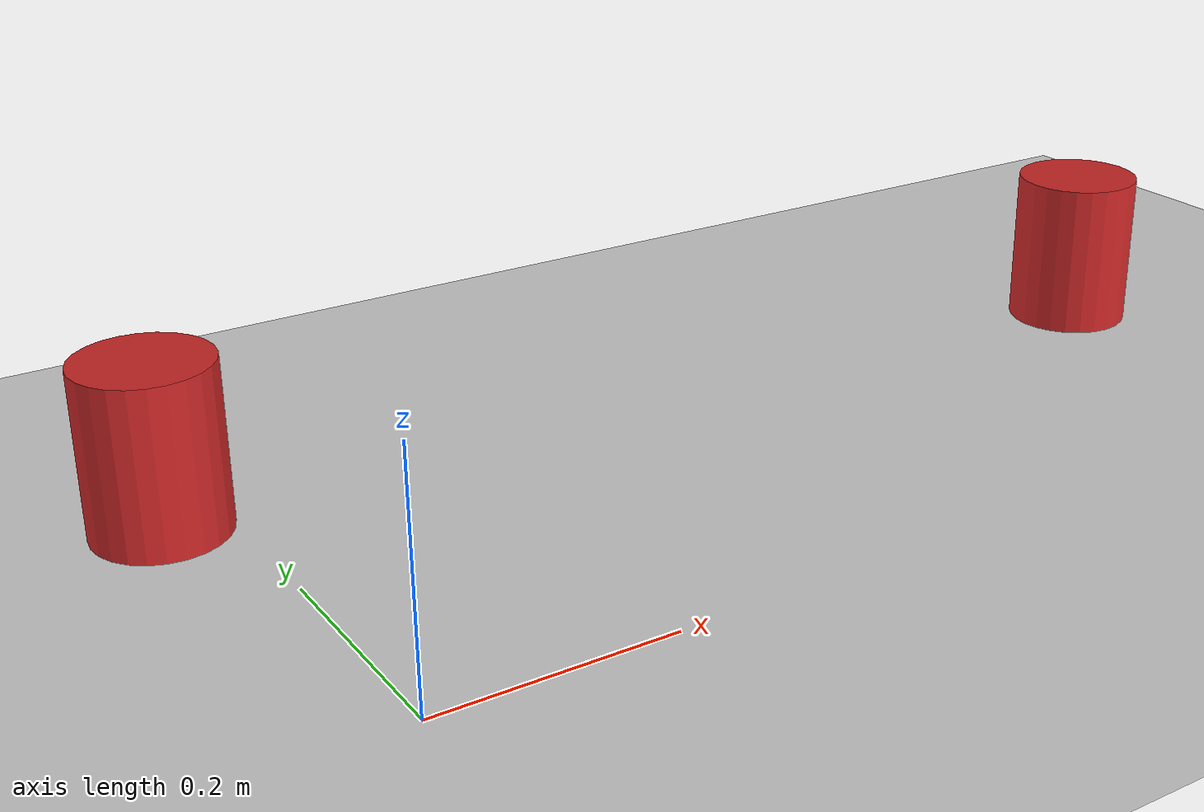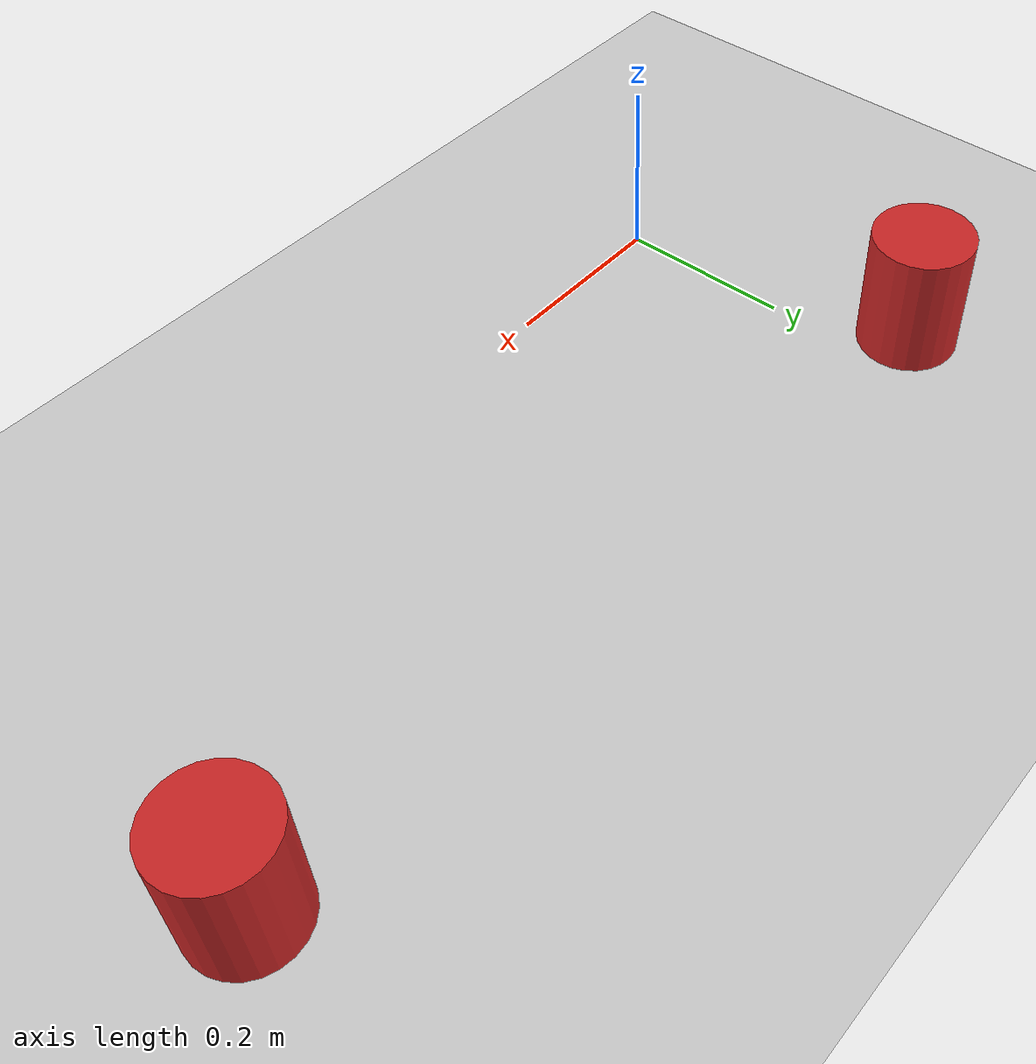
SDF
<sdf version="1.7">
 <world name="default">
  <light name="sun" type="directional">
   <pose>0 0 10 0 -0 0</pose>
   <diffuse>0.8 0.8 0.8 1</diffuse>
   <specular>0.2 0.2 0.2 1</specular>
   <attenuation>
    <range>1000</range>
    <constant>0.9</constant>
    <linear>0.01</linear>
    <quadratic>0.001</quadratic>
   </attenuation>
   <direction>-0.5 0.1 -0.9</direction>
   <spot><inner_angle>0</inner_angle><outer_angle>0</outer_angle><falloff>0</falloff></spot>
  </light>
  <model name="ground_plane">
   <static>1</static>
   <link name="link">
    <collision name="collision">
     <geometry><plane><normal>0 0 1</normal><size>100 100</size></plane></geometry>
     <surface>
      <contact><collide_bitmask>65535</collide_bitmask></contact>
      <friction><ode><mu>100</mu><mu2>50</mu2></ode></friction>
     </surface>
    </collision>
    <visual name="visual">
     <cast_shadows>0</cast_shadows>
     <geometry><plane><normal>0 0 1</normal><size>100 100</size></plane></geometry>
     <material>
      <script><uri>file://media/materials/scripts/gazebo.material</uri><name>Gazebo/Grey</name></script>
     </material>
    </visual>
   </link>
  </model>
  <gravity>0 0 -9.8</gravity>
  <magnetic_field>6e-06 2.3e-05 -4.2e-05</magnetic_field>
  <atmosphere type="adiabatic"/>
  <physics type="ode">
   <max_step_size>0.001</max_step_size>
   <real_time_factor>1</real_time_factor>
   <real_time_update_rate>1000</real_time_update_rate>
  </physics>
  <scene><ambient>0.4 0.4 0.4 1</ambient><background>0.7 0.7 0.7 1</background><shadows>1</shadows></scene>
  <audio><device>default</device></audio>
  <spherical_coordinates>
   <surface_model>EARTH_WGS84</surface_model>
   <latitude_deg>0</latitude_deg>
   <longitude_deg>0</longitude_deg>
   <elevation>0</elevation>
   <heading_deg>0</heading_deg>
  </spherical_coordinates>
  <model name="2OBSTACLES">
   <static>1</static>
   <link name="link_0">
    <inertial>
     <mass>0.0018052</mass>
     <inertia><ixx>4.5e-06</ixx><ixy>0</ixy><ixz>0</ixz><iyy>4.5e-06</iyy><iyz>0</iyz><izz>2.85e-06</izz></inertia>
    </inertial>
    <pose>-0.45803 0.023221 0 0 -0 0</pose>
    <visual name="visual">
     <geometry><cylinder><radius>0.0561903</radius><length>0.143041</length></cylinder></geometry>
     <material>
      <lighting>1</lighting>
      <script><uri>file://media/materials/scripts/gazebo.material</uri><name>Gazebo/Red</name></script>
      <shader type="pixel"><normal_map>__default__</normal_map></shader>
      <ambient>1 0 0 1</ambient>
      <diffuse>1 0 0 1</diffuse>
      <specular>0.1 0.1 0.1 1</specular>
      <emissive>0 0 0 1</emissive>
     </material>
    </visual>
    <collision name="collision">
     <geometry><cylinder><radius>0.05619</radius><length>0.143041</length></cylinder></geometry>
     <surface>
      <friction>
       <ode><mu>1</mu><mu2>1</mu2><fdir1>0 0 0</fdir1><slip1>0</slip1><slip2>0</slip2></ode>
       <torsional>
        <coefficient>1</coefficient>
        <patch_radius>0</patch_radius>
        <surface_radius>0</surface_radius>
        <use_patch_radius>1</use_patch_radius>
        <ode><slip>0</slip></ode>
       </torsional>
      </friction>
      <bounce><restitution_coefficient>0</restitution_coefficient><threshold>1e+06</threshold></bounce>
      <contact>
       <collide_without_contact>0</collide_without_contact>
       <collide_without_contact_bitmask>1</collide_without_contact_bitmask>
       <collide_bitmask>1</collide_bitmask>
       <ode>
        <soft_cfm>0</soft_cfm>
        <soft_erp>0.2</soft_erp>
        <kp>1e+13</kp>
        <kd>1</kd>
        <max_vel>0.01</max_vel>
        <min_depth>0</min_depth>
       </ode>
       <bullet>
        <split_impulse>1</split_impulse>
        <split_impulse_penetration_threshold>-0.01</split_impulse_penetration_threshold>
        <soft_cfm>0</soft_cfm>
        <soft_erp>0.2</soft_erp>
        <kp>1e+13</kp>
        <kd>1</kd>
       </bullet>
      </contact>
     </surface>
    </collision>
   </link>
   <link name="link_0_clone">
    <inertial>
     <mass>0.0018052</mass>
     <inertia><ixx>4.5e-06</ixx><ixy>0</ixy><ixz>0</ixz><iyy>4.5e-06</iyy><iyz>0</iyz><izz>2.85e-06</izz></inertia>
    </inertial>
    <pose>0.458031 -0.02322 0 0 -0 0</pose>
    <visual name="visual">
     <geometry><cylinder><radius>0.0561903</radius><length>0.143041</length></cylinder></geometry>
     <material>
      <lighting>1</lighting>
      <script><uri>file://media/materials/scripts/gazebo.material</uri><name>Gazebo/Red</name></script>
      <shader type="pixel"><normal_map>__default__</normal_map></shader>
      <ambient>1 0 0 1</ambient>
      <diffuse>1 0 0 1</diffuse>
      <specular>0.1 0.1 0.1 1</specular>
      <emissive>0 0 0 1</emissive>
     </material>
    </visual>
    <collision name="collision">
     <geometry><cylinder><radius>0.05619</radius><length>0.143041</length></cylinder></geometry>
     <surface>
      <friction>
       <ode><mu>1</mu><mu2>1</mu2><fdir1>0 0 0</fdir1><slip1>0</slip1><slip2>0</slip2></ode>
       <torsional>
        <coefficient>1</coefficient>
        <patch_radius>0</patch_radius>
        <surface_radius>0</surface_radius>
        <use_patch_radius>1</use_patch_radius>
        <ode><slip>0</slip></ode>
       </torsional>
      </friction>
      <bounce><restitution_coefficient>0</restitution_coefficient><threshold>1e+06</threshold></bounce>
      <contact>
       <collide_without_contact>0</collide_without_contact>
       <collide_without_contact_bitmask>1</collide_without_contact_bitmask>
       <collide_bitmask>1</collide_bitmask>
       <ode>
        <soft_cfm>0</soft_cfm>
        <soft_erp>0.2</soft_erp>
        <kp>1e+13</kp>
        <kd>1</kd>
        <max_vel>0.01</max_vel>
        <min_depth>0</min_depth>
       </ode>
       <bullet>
        <split_impulse>1</split_impulse>
        <split_impulse_penetration_threshold>-0.01</split_impulse_penetration_threshold>
        <soft_cfm>0</soft_cfm>
        <soft_erp>0.2</soft_erp>
        <kp>1e+13</kp>
        <kd>1</kd>
       </bullet>
      </contact>
     </surface>
    </collision>
   </link>
   <static>0</static>
   <pose>0.403949 0.320523 0.071895 0 -0 0</pose>
  </model>
 </world>
</sdf>
